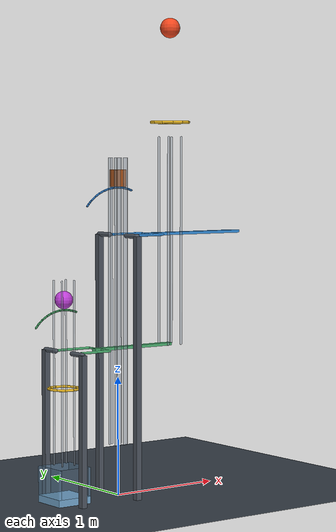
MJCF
<mujoco model="passive_two_stage_drop_stop_release">
  <compiler angle="radian" autolimits="true"/>
  <option timestep="0.002" gravity="0 0 -9.81" integrator="implicitfast" iterations="100"/>
  <size njmax="2000" nconmax="400"/>
  <visual>
    <headlight ambient="0.45 0.45 0.45" diffuse="0.75 0.75 0.75" specular="0.2 0.2 0.2"/>
  </visual>

  <worldbody>
    <light name="scene_light" pos="1 -3 5" dir="-0.2 0.5 -1"/>
    <camera name="overview" pos="4 -7 4" xyaxes="0.868 0.496 0 -0.188 0.329 0.925"/>
    <geom name="floor" type="plane" size="5 5 0.1" rgba="0.22 0.25 0.29 1" friction="1 0.01 0.001"/>

    <body name="ball1" pos="0.55 0 3.95">
      <freejoint name="ball1_free"/>
      <geom name="ball1_sphere" type="sphere" size="0.085" mass="0.8" rgba="0.95 0.28 0.12 1" friction="0.15 0.003 0.0001" solref="0.008 1"/>
    </body>

    <body name="hoop1" pos="0.55 0 3.15">
      <geom name="hoop1_01" type="capsule" fromto="0.16 0 0 0.138564 0.08 0" size="0.012" rgba="0.95 0.75 0.15 1"/>
      <geom name="hoop1_02" type="capsule" fromto="0.138564 0.08 0 0.08 0.138564 0" size="0.012" rgba="0.95 0.75 0.15 1"/>
      <geom name="hoop1_03" type="capsule" fromto="0.08 0.138564 0 0 0.16 0" size="0.012" rgba="0.95 0.75 0.15 1"/>
      <geom name="hoop1_04" type="capsule" fromto="0 0.16 0 -0.08 0.138564 0" size="0.012" rgba="0.95 0.75 0.15 1"/>
      <geom name="hoop1_05" type="capsule" fromto="-0.08 0.138564 0 -0.138564 0.08 0" size="0.012" rgba="0.95 0.75 0.15 1"/>
      <geom name="hoop1_06" type="capsule" fromto="-0.138564 0.08 0 -0.16 0 0" size="0.012" rgba="0.95 0.75 0.15 1"/>
      <geom name="hoop1_07" type="capsule" fromto="-0.16 0 0 -0.138564 -0.08 0" size="0.012" rgba="0.95 0.75 0.15 1"/>
      <geom name="hoop1_08" type="capsule" fromto="-0.138564 -0.08 0 -0.08 -0.138564 0" size="0.012" rgba="0.95 0.75 0.15 1"/>
      <geom name="hoop1_09" type="capsule" fromto="-0.08 -0.138564 0 0 -0.16 0" size="0.012" rgba="0.95 0.75 0.15 1"/>
      <geom name="hoop1_10" type="capsule" fromto="0 -0.16 0 0.08 -0.138564 0" size="0.012" rgba="0.95 0.75 0.15 1"/>
      <geom name="hoop1_11" type="capsule" fromto="0.08 -0.138564 0 0.138564 -0.08 0" size="0.012" rgba="0.95 0.75 0.15 1"/>
      <geom name="hoop1_12" type="capsule" fromto="0.138564 -0.08 0 0.16 0 0" size="0.012" rgba="0.95 0.75 0.15 1"/>
    </body>

    <body name="flap1" pos="0 0 2.2">
      <joint name="flap1_hinge" type="hinge" axis="0 -1 0" range="-0.9 0" damping="0.06" frictionloss="1.1" armature="0.003" solreflimit="0.003 1" solimplimit="0.99 0.99 0.001"/>
      <geom name="flap1_plate" type="box" pos="0.8 0 0" size="0.5 0.027 0.012" mass="0.12" rgba="0.2 0.55 0.85 1" friction="0.08 0.001 0.0001" solref="0.008 1"/>
      <geom name="flap1_side_a" type="capsule" fromto="0 -0.15 0 0.36 -0.15 0" size="0.01" mass="0.012" rgba="0.2 0.55 0.85 1"/>
      <geom name="flap1_side_b" type="capsule" fromto="0 0.15 0 0.36 0.15 0" size="0.01" mass="0.012" rgba="0.2 0.55 0.85 1"/>
      <geom name="flap1_crossbar" type="capsule" fromto="0.36 -0.15 0 0.36 0.15 0" size="0.008" mass="0.01" rgba="0.2 0.55 0.85 1"/>

      <body name="flap1_retainer" pos="0 0 0">
        <joint name="flap1_retainer_hinge" type="hinge" axis="0 -1 0" range="-0.35 0" damping="0.012" frictionloss="0.4" armature="0.003" solreflimit="0.008 1" solimplimit="0.99 0.99 0.001"/>
        <geom name="flap1_cam_end_01" type="capsule" fromto="-0.313331 0 0.248644 -0.300512 0 0.263993" size="0.008" mass="0.001" rgba="0.15 0.4 0.65 1" friction="0.02 0.001 0.0001" solref="0.006 1"/>
        <geom name="flap1_cam_end_02" type="capsule" fromto="-0.300512 0 0.263993 -0.286942 0 0.278683" size="0.008" mass="0.001" rgba="0.15 0.4 0.65 1" friction="0.02 0.001 0.0001" solref="0.006 1"/>
        <geom name="flap1_cam_end_03" type="capsule" fromto="-0.286942 0 0.278683 -0.277015 0 0.288553" size="0.008" mass="0.001" rgba="0.15 0.4 0.65 1" friction="0.02 0.001 0.0001" solref="0.006 1"/>
        <geom name="flap1_cam_tip" type="capsule" fromto="-0.277015 0 0.288553 -0.270902 0 0.294299" size="0.008" mass="0.0015" rgba="0.15 0.4 0.65 1" friction="0.02 0.001 0.0001" solref="0.006 1"/>
        <geom name="flap1_cam_01" type="capsule" fromto="-0.270902 0 0.294299 -0.232414 0 0.325551" size="0.008" mass="0.005" rgba="0.15 0.4 0.65 1" friction="0.02 0.001 0.0001" solref="0.006 1"/>
        <geom name="flap1_cam_02" type="capsule" fromto="-0.232414 0 0.325551 -0.191770 0 0.351033" size="0.008" mass="0.005" rgba="0.15 0.4 0.65 1" friction="0.02 0.001 0.0001" solref="0.006 1"/>
        <geom name="flap1_cam_03" type="capsule" fromto="-0.191770 0 0.351033 -0.148368 0 0.371466" size="0.008" mass="0.005" rgba="0.15 0.4 0.65 1" friction="0.02 0.001 0.0001" solref="0.006 1"/>
        <geom name="flap1_cam_04" type="capsule" fromto="-0.148368 0 0.371466 -0.102832 0 0.386556" size="0.008" mass="0.005" rgba="0.15 0.4 0.65 1" friction="0.02 0.001 0.0001" solref="0.006 1"/>
        <geom name="flap1_cam_05" type="capsule" fromto="-0.102832 0 0.386556 -0.055817 0 0.396086" size="0.008" mass="0.005" rgba="0.15 0.4 0.65 1" friction="0.02 0.001 0.0001" solref="0.006 1"/>
        <geom name="flap1_cam_06" type="capsule" fromto="-0.055817 0 0.396086 0 0 0.4" size="0.008" mass="0.005" rgba="0.15 0.4 0.65 1" friction="0.02 0.001 0.0001" solref="0.006 1"/>
        <geom name="flap1_cam_07" type="capsule" fromto="0 0 0.4 0.047885 0 0.397123" size="0.008" mass="0.005" rgba="0.15 0.4 0.65 1" friction="0.02 0.001 0.0001" solref="0.006 1"/>
        <geom name="flap1_cam_08" type="capsule" fromto="0.047885 0 0.397123 0.095081 0 0.388535" size="0.008" mass="0.005" rgba="0.15 0.4 0.65 1" friction="0.02 0.001 0.0001" solref="0.006 1"/>
        <geom name="flap1_cam_09" type="capsule" fromto="0.095081 0 0.388535 0.140910 0 0.374359" size="0.008" mass="0.005" rgba="0.15 0.4 0.65 1" friction="0.02 0.001 0.0001" solref="0.006 1"/>
      </body>
    </body>

    <body name="block" pos="0 0 2.678">
      <freejoint name="block_free"/>
      <geom name="block_box" type="box" size="0.05 0.05 0.07" mass="0.55" rgba="0.7 0.35 0.12 1" friction="0.05 0.001 0.0001" solref="0.008 1"/>
    </body>

    <body name="flap2" pos="-0.55 0 1.25">
      <joint name="flap2_hinge" type="hinge" axis="0 -1 0" range="-0.9 0" damping="0.06" frictionloss="1.0" armature="0.003" solreflimit="0.003 1" solimplimit="0.99 0.99 0.001"/>
      <geom name="flap2_plate" type="box" pos="0.7 0 0" size="0.4 0.027 0.012" mass="0.12" rgba="0.3 0.7 0.45 1" friction="0.08 0.001 0.0001" solref="0.008 1"/>
      <geom name="flap2_side_a" type="capsule" fromto="0 -0.15 0 0.36 -0.15 0" size="0.01" mass="0.012" rgba="0.3 0.7 0.45 1"/>
      <geom name="flap2_side_b" type="capsule" fromto="0 0.15 0 0.36 0.15 0" size="0.01" mass="0.012" rgba="0.3 0.7 0.45 1"/>
      <geom name="flap2_crossbar" type="capsule" fromto="0.36 -0.15 0 0.36 0.15 0" size="0.008" mass="0.01" rgba="0.3 0.7 0.45 1"/>

      <body name="flap2_retainer" pos="0 0 0">
        <joint name="flap2_retainer_hinge" type="hinge" axis="0 -1 0" range="-0.35 0" damping="0.012" frictionloss="0.3" armature="0.003" solreflimit="0.008 1" solimplimit="0.99 0.99 0.001"/>
        <geom name="flap2_cam_end_01" type="capsule" fromto="-0.274165 0 0.217563 -0.255901 0 0.238777" size="0.008" mass="0.001" rgba="0.2 0.5 0.3 1" friction="0.02 0.001 0.0001" solref="0.006 1"/>
        <geom name="flap2_cam_end_02" type="capsule" fromto="-0.255901 0 0.238777 -0.236001 0 0.258464" size="0.008" mass="0.001" rgba="0.2 0.5 0.3 1" friction="0.02 0.001 0.0001" solref="0.006 1"/>
        <geom name="flap2_cam_end_03" type="capsule" fromto="-0.236001 0 0.258464 -0.217345 0 0.274338" size="0.008" mass="0.001" rgba="0.2 0.5 0.3 1" friction="0.02 0.001 0.0001" solref="0.006 1"/>
        <geom name="flap2_cam_tip" type="capsule" fromto="-0.217345 0 0.274338 -0.209019 0 0.280734" size="0.008" mass="0.0015" rgba="0.2 0.5 0.3 1" friction="0.02 0.001 0.0001" solref="0.006 1"/>
        <geom name="flap2_cam_01" type="capsule" fromto="-0.209019 0 0.280734 -0.167799 0 0.307154" size="0.008" mass="0.0045" rgba="0.2 0.5 0.3 1" friction="0.02 0.001 0.0001" solref="0.006 1"/>
        <geom name="flap2_cam_02" type="capsule" fromto="-0.167799 0 0.307154 -0.129822 0 0.325033" size="0.008" mass="0.0045" rgba="0.2 0.5 0.3 1" friction="0.02 0.001 0.0001" solref="0.006 1"/>
        <geom name="flap2_cam_03" type="capsule" fromto="-0.129822 0 0.325033 -0.089978 0 0.338237" size="0.008" mass="0.0045" rgba="0.2 0.5 0.3 1" friction="0.02 0.001 0.0001" solref="0.006 1"/>
        <geom name="flap2_cam_04" type="capsule" fromto="-0.089978 0 0.338237 -0.048840 0 0.346576" size="0.008" mass="0.0045" rgba="0.2 0.5 0.3 1" friction="0.02 0.001 0.0001" solref="0.006 1"/>
        <geom name="flap2_cam_05" type="capsule" fromto="-0.048840 0 0.346576 0 0 0.35" size="0.008" mass="0.0045" rgba="0.2 0.5 0.3 1" friction="0.02 0.001 0.0001" solref="0.006 1"/>
        <geom name="flap2_cam_06" type="capsule" fromto="0 0 0.35 0.041899 0 0.347483" size="0.008" mass="0.0045" rgba="0.2 0.5 0.3 1" friction="0.02 0.001 0.0001" solref="0.006 1"/>
        <geom name="flap2_cam_07" type="capsule" fromto="0.041899 0 0.347483 0.083196 0 0.339968" size="0.008" mass="0.0045" rgba="0.2 0.5 0.3 1" friction="0.02 0.001 0.0001" solref="0.006 1"/>
        <geom name="flap2_cam_08" type="capsule" fromto="0.083196 0 0.339968 0.123296 0 0.327564" size="0.008" mass="0.0045" rgba="0.2 0.5 0.3 1" friction="0.02 0.001 0.0001" solref="0.006 1"/>
      </body>
    </body>

    <body name="ball2" pos="-0.55 0 1.683">
      <freejoint name="ball2_free"/>
      <geom name="ball2_sphere" type="sphere" size="0.075" mass="0.22" rgba="0.75 0.25 0.85 1" friction="0.25 0.005 0.0002" solref="0.01 1"/>
    </body>

    <body name="hoop2" pos="-0.55 0 0.95">
      <geom name="hoop2_01" type="capsule" fromto="0.13 0 0 0.112583 0.065 0" size="0.01" rgba="0.95 0.75 0.15 1"/>
      <geom name="hoop2_02" type="capsule" fromto="0.112583 0.065 0 0.065 0.112583 0" size="0.01" rgba="0.95 0.75 0.15 1"/>
      <geom name="hoop2_03" type="capsule" fromto="0.065 0.112583 0 0 0.13 0" size="0.01" rgba="0.95 0.75 0.15 1"/>
      <geom name="hoop2_04" type="capsule" fromto="0 0.13 0 -0.065 0.112583 0" size="0.01" rgba="0.95 0.75 0.15 1"/>
      <geom name="hoop2_05" type="capsule" fromto="-0.065 0.112583 0 -0.112583 0.065 0" size="0.01" rgba="0.95 0.75 0.15 1"/>
      <geom name="hoop2_06" type="capsule" fromto="-0.112583 0.065 0 -0.13 0 0" size="0.01" rgba="0.95 0.75 0.15 1"/>
      <geom name="hoop2_07" type="capsule" fromto="-0.13 0 0 -0.112583 -0.065 0" size="0.01" rgba="0.95 0.75 0.15 1"/>
      <geom name="hoop2_08" type="capsule" fromto="-0.112583 -0.065 0 -0.065 -0.112583 0" size="0.01" rgba="0.95 0.75 0.15 1"/>
      <geom name="hoop2_09" type="capsule" fromto="-0.065 -0.112583 0 0 -0.13 0" size="0.01" rgba="0.95 0.75 0.15 1"/>
      <geom name="hoop2_10" type="capsule" fromto="0 -0.13 0 0.065 -0.112583 0" size="0.01" rgba="0.95 0.75 0.15 1"/>
      <geom name="hoop2_11" type="capsule" fromto="0.065 -0.112583 0 0.112583 -0.065 0" size="0.01" rgba="0.95 0.75 0.15 1"/>
      <geom name="hoop2_12" type="capsule" fromto="0.112583 -0.065 0 0.13 0 0" size="0.01" rgba="0.95 0.75 0.15 1"/>
    </body>

    <body name="cup" pos="-0.55 0 0">
      <geom name="cup_base" type="box" pos="0 0 0.03" size="0.155 0.155 0.03" rgba="0.45 0.65 0.8 1" friction="1 0.02 0.002" solref="0.015 1"/>
      <geom name="cup_wall_xp" type="box" pos="0.143 0 0.18" size="0.012 0.155 0.12" rgba="0.45 0.65 0.8 0.45" friction="0.8 0.01 0.001" solref="0.015 1"/>
      <geom name="cup_wall_xm" type="box" pos="-0.143 0 0.18" size="0.012 0.155 0.12" rgba="0.45 0.65 0.8 0.45" friction="0.8 0.01 0.001" solref="0.015 1"/>
      <geom name="cup_wall_yp" type="box" pos="0 0.143 0.18" size="0.131 0.012 0.12" rgba="0.45 0.65 0.8 0.45" friction="0.8 0.01 0.001" solref="0.015 1"/>
      <geom name="cup_wall_ym" type="box" pos="0 -0.143 0.18" size="0.131 0.012 0.12" rgba="0.45 0.65 0.8 0.25" friction="0.8 0.01 0.001" solref="0.015 1"/>
    </body>

    <body name="ball1_guides">
      <geom name="ball1_guides_pp" type="capsule" fromto="0.618 0.068 1.25 0.618 0.068 3.02" size="0.01" rgba="0.55 0.6 0.65 0.45" friction="0.01 0.001 0.0001" solref="0.008 1"/>
      <geom name="ball1_guides_pm" type="capsule" fromto="0.618 -0.068 1.25 0.618 -0.068 3.02" size="0.01" rgba="0.55 0.6 0.65 0.45" friction="0.01 0.001 0.0001" solref="0.008 1"/>
      <geom name="ball1_guides_mp" type="capsule" fromto="0.482 0.068 1.25 0.482 0.068 3.02" size="0.01" rgba="0.55 0.6 0.65 0.45" friction="0.01 0.001 0.0001" solref="0.008 1"/>
      <geom name="ball1_guides_mm" type="capsule" fromto="0.482 -0.068 1.25 0.482 -0.068 3.02" size="0.01" rgba="0.55 0.6 0.65 0.45" friction="0.01 0.001 0.0001" solref="0.008 1"/>
    </body>

    <body name="block_guides">
      <geom name="block_guides_xpp" type="box" pos="0.057 0.044 1.64" size="0.005 0.01 1.21" rgba="0.55 0.6 0.65 0.45" friction="0.01 0.001 0.0001" solref="0.008 1"/>
      <geom name="block_guides_xpm" type="box" pos="0.057 -0.044 1.64" size="0.005 0.01 1.21" rgba="0.55 0.6 0.65 0.45" friction="0.01 0.001 0.0001" solref="0.008 1"/>
      <geom name="block_guides_xmp" type="box" pos="-0.057 0.044 1.64" size="0.005 0.01 1.21" rgba="0.55 0.6 0.65 0.45" friction="0.01 0.001 0.0001" solref="0.008 1"/>
      <geom name="block_guides_xmm" type="box" pos="-0.057 -0.044 1.64" size="0.005 0.01 1.21" rgba="0.55 0.6 0.65 0.45" friction="0.01 0.001 0.0001" solref="0.008 1"/>
      <geom name="block_guides_ypp" type="box" pos="0.032 0.057 1.64" size="0.016 0.005 1.21" rgba="0.55 0.6 0.65 0.45" friction="0.01 0.001 0.0001" solref="0.008 1"/>
      <geom name="block_guides_ypm" type="box" pos="-0.032 0.057 1.64" size="0.016 0.005 1.21" rgba="0.55 0.6 0.65 0.45" friction="0.01 0.001 0.0001" solref="0.008 1"/>
      <geom name="block_guides_ymp" type="box" pos="0.032 -0.057 1.64" size="0.016 0.005 1.21" rgba="0.55 0.6 0.65 0.45" friction="0.01 0.001 0.0001" solref="0.008 1"/>
      <geom name="block_guides_ymm" type="box" pos="-0.032 -0.057 1.64" size="0.016 0.005 1.21" rgba="0.55 0.6 0.65 0.45" friction="0.01 0.001 0.0001" solref="0.008 1"/>
    </body>

    <body name="ball2_guides">
      <geom name="ball2_guides_pp" type="capsule" fromto="-0.49 0.06 0.32 -0.49 0.06 1.84" size="0.008" rgba="0.55 0.6 0.65 0.4" friction="0.01 0.001 0.0001" solref="0.008 1"/>
      <geom name="ball2_guides_pm" type="capsule" fromto="-0.49 -0.06 0.32 -0.49 -0.06 1.84" size="0.008" rgba="0.55 0.6 0.65 0.4" friction="0.01 0.001 0.0001" solref="0.008 1"/>
      <geom name="ball2_guides_mp" type="capsule" fromto="-0.61 0.06 0.32 -0.61 0.06 1.84" size="0.008" rgba="0.55 0.6 0.65 0.4" friction="0.01 0.001 0.0001" solref="0.008 1"/>
      <geom name="ball2_guides_mm" type="capsule" fromto="-0.61 -0.06 0.32 -0.61 -0.06 1.84" size="0.008" rgba="0.55 0.6 0.65 0.4" friction="0.01 0.001 0.0001" solref="0.008 1"/>
    </body>

    <body name="support_frame">
      <geom name="support_frame_post_1a" type="box" pos="0 -0.27 1.1" size="0.025 0.025 1.1" rgba="0.3 0.33 0.37 1"/>
      <geom name="support_frame_post_1b" type="box" pos="0 0.27 1.1" size="0.025 0.025 1.1" rgba="0.3 0.33 0.37 1"/>
      <geom name="support_frame_bearing_1a" type="capsule" fromto="0 -0.27 2.2 0 -0.12 2.2" size="0.02" rgba="0.3 0.33 0.37 1"/>
      <geom name="support_frame_bearing_1b" type="capsule" fromto="0 0.12 2.2 0 0.27 2.2" size="0.02" rgba="0.3 0.33 0.37 1"/>
      <geom name="support_frame_post_2a" type="box" pos="-0.55 -0.27 0.625" size="0.025 0.025 0.625" rgba="0.3 0.33 0.37 1"/>
      <geom name="support_frame_post_2b" type="box" pos="-0.55 0.27 0.625" size="0.025 0.025 0.625" rgba="0.3 0.33 0.37 1"/>
      <geom name="support_frame_bearing_2a" type="capsule" fromto="-0.55 -0.27 1.25 -0.55 -0.12 1.25" size="0.02" rgba="0.3 0.33 0.37 1"/>
      <geom name="support_frame_bearing_2b" type="capsule" fromto="-0.55 0.12 1.25 -0.55 0.27 1.25" size="0.02" rgba="0.3 0.33 0.37 1"/>
    </body>
  </worldbody>

  <contact>
    <exclude name="bearing_clearance_1" body1="flap1" body2="support_frame"/>
    <exclude name="bearing_clearance_2" body1="flap2" body2="support_frame"/>
    <exclude name="retainer_clearance_1" body1="flap1_retainer" body2="support_frame"/>
    <exclude name="retainer_clearance_2" body1="flap2_retainer" body2="support_frame"/>
  </contact>

  <keyframe>
    <key name="start" qpos="0.55 0 3.95 1 0 0 0 0 0 0 0 2.678 1 0 0 0 0 0 -0.55 0 1.683 1 0 0 0"/>
  </keyframe>
</mujoco>
